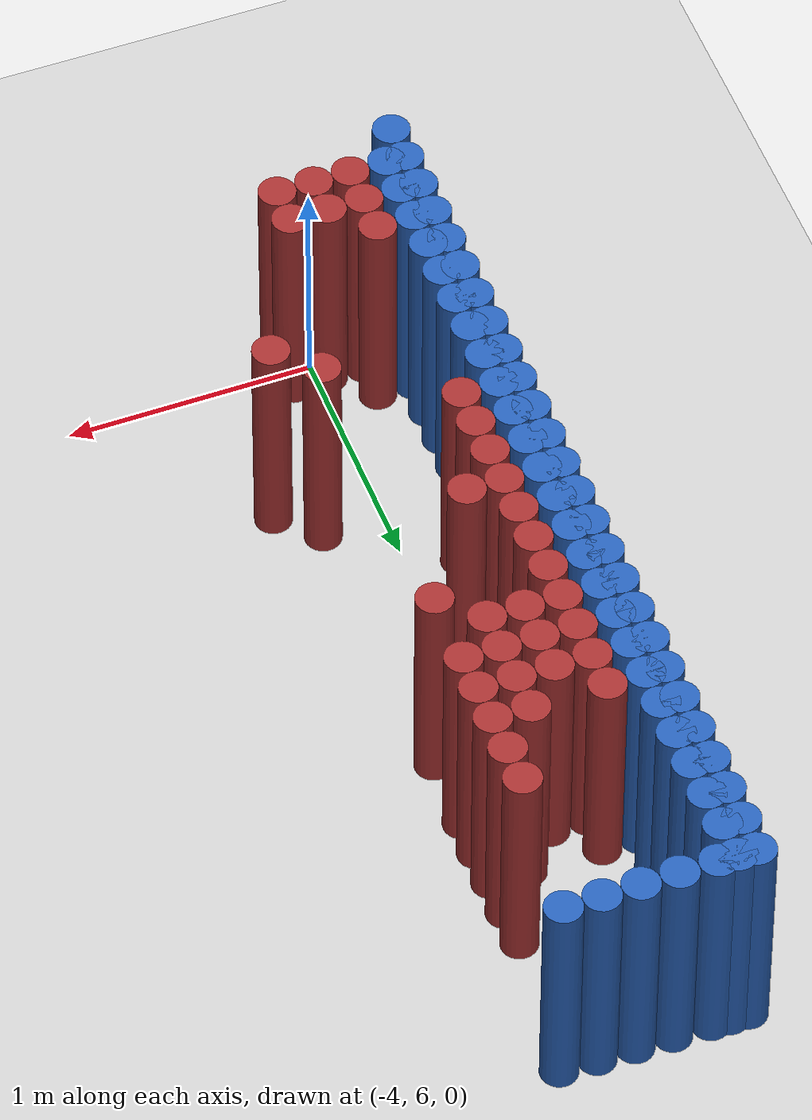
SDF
<sdf version="1.6">
 <world name="barn_world">
  <model name="ground_plane">
   <static>1</static>
   <link name="link">
    <collision name="collision">
     <geometry><plane><normal>0 0 1</normal><size>100 100</size></plane></geometry>
    </collision>
    <visual name="visual">
     <geometry><plane><normal>0 0 1</normal><size>100 100</size></plane></geometry>
     <material>
      <script><uri>file://media/materials/scripts/gazebo.material</uri><name>Gazebo/Grey</name></script>
     </material>
    </visual>
   </link>
  </model>
  <model name="unit_cylinder_131">
   <static>1</static>
   <pose>-4.3500 5.9250 0.5 0 0 0</pose>
   <link name="link">
    <collision name="collision">
     <geometry><cylinder><radius>0.075</radius><length>1</length></cylinder></geometry>
    </collision>
    <visual name="visual">
     <geometry><cylinder><radius>0.075</radius><length>1</length></cylinder></geometry>
     <material><ambient>0.152 0.379 0.72 1</ambient><diffuse>0.152 0.379 0.72 1</diffuse></material>
    </visual>
   </link>
  </model>
  <model name="unit_cylinder_132">
   <static>1</static>
   <pose>-4.3500 6.0750 0.5 0 0 0</pose>
   <link name="link">
    <collision name="collision">
     <geometry><cylinder><radius>0.075</radius><length>1</length></cylinder></geometry>
    </collision>
    <visual name="visual">
     <geometry><cylinder><radius>0.075</radius><length>1</length></cylinder></geometry>
     <material><ambient>0.152 0.379 0.72 1</ambient><diffuse>0.152 0.379 0.72 1</diffuse></material>
    </visual>
   </link>
  </model>
  <model name="unit_cylinder_133">
   <static>1</static>
   <pose>-4.3500 6.2250 0.5 0 0 0</pose>
   <link name="link">
    <collision name="collision">
     <geometry><cylinder><radius>0.075</radius><length>1</length></cylinder></geometry>
    </collision>
    <visual name="visual">
     <geometry><cylinder><radius>0.075</radius><length>1</length></cylinder></geometry>
     <material><ambient>0.152 0.379 0.72 1</ambient><diffuse>0.152 0.379 0.72 1</diffuse></material>
    </visual>
   </link>
  </model>
  <model name="unit_cylinder_134">
   <static>1</static>
   <pose>-4.3500 6.3750 0.5 0 0 0</pose>
   <link name="link">
    <collision name="collision">
     <geometry><cylinder><radius>0.075</radius><length>1</length></cylinder></geometry>
    </collision>
    <visual name="visual">
     <geometry><cylinder><radius>0.075</radius><length>1</length></cylinder></geometry>
     <material><ambient>0.152 0.379 0.72 1</ambient><diffuse>0.152 0.379 0.72 1</diffuse></material>
    </visual>
   </link>
  </model>
  <model name="unit_cylinder_135">
   <static>1</static>
   <pose>-4.3500 6.5250 0.5 0 0 0</pose>
   <link name="link">
    <collision name="collision">
     <geometry><cylinder><radius>0.075</radius><length>1</length></cylinder></geometry>
    </collision>
    <visual name="visual">
     <geometry><cylinder><radius>0.075</radius><length>1</length></cylinder></geometry>
     <material><ambient>0.152 0.379 0.72 1</ambient><diffuse>0.152 0.379 0.72 1</diffuse></material>
    </visual>
   </link>
  </model>
  <model name="unit_cylinder_136">
   <static>1</static>
   <pose>-4.3500 6.6750 0.5 0 0 0</pose>
   <link name="link">
    <collision name="collision">
     <geometry><cylinder><radius>0.075</radius><length>1</length></cylinder></geometry>
    </collision>
    <visual name="visual">
     <geometry><cylinder><radius>0.075</radius><length>1</length></cylinder></geometry>
     <material><ambient>0.152 0.379 0.72 1</ambient><diffuse>0.152 0.379 0.72 1</diffuse></material>
    </visual>
   </link>
  </model>
  <model name="unit_cylinder_137">
   <static>1</static>
   <pose>-4.3500 6.8250 0.5 0 0 0</pose>
   <link name="link">
    <collision name="collision">
     <geometry><cylinder><radius>0.075</radius><length>1</length></cylinder></geometry>
    </collision>
    <visual name="visual">
     <geometry><cylinder><radius>0.075</radius><length>1</length></cylinder></geometry>
     <material><ambient>0.152 0.379 0.72 1</ambient><diffuse>0.152 0.379 0.72 1</diffuse></material>
    </visual>
   </link>
  </model>
  <model name="unit_cylinder_138">
   <static>1</static>
   <pose>-4.3500 6.9750 0.5 0 0 0</pose>
   <link name="link">
    <collision name="collision">
     <geometry><cylinder><radius>0.075</radius><length>1</length></cylinder></geometry>
    </collision>
    <visual name="visual">
     <geometry><cylinder><radius>0.075</radius><length>1</length></cylinder></geometry>
     <material><ambient>0.152 0.379 0.72 1</ambient><diffuse>0.152 0.379 0.72 1</diffuse></material>
    </visual>
   </link>
  </model>
  <model name="unit_cylinder_139">
   <static>1</static>
   <pose>-4.3500 7.1250 0.5 0 0 0</pose>
   <link name="link">
    <collision name="collision">
     <geometry><cylinder><radius>0.075</radius><length>1</length></cylinder></geometry>
    </collision>
    <visual name="visual">
     <geometry><cylinder><radius>0.075</radius><length>1</length></cylinder></geometry>
     <material><ambient>0.152 0.379 0.72 1</ambient><diffuse>0.152 0.379 0.72 1</diffuse></material>
    </visual>
   </link>
  </model>
  <model name="unit_cylinder_140">
   <static>1</static>
   <pose>-4.3500 7.2750 0.5 0 0 0</pose>
   <link name="link">
    <collision name="collision">
     <geometry><cylinder><radius>0.075</radius><length>1</length></cylinder></geometry>
    </collision>
    <visual name="visual">
     <geometry><cylinder><radius>0.075</radius><length>1</length></cylinder></geometry>
     <material><ambient>0.152 0.379 0.72 1</ambient><diffuse>0.152 0.379 0.72 1</diffuse></material>
    </visual>
   </link>
  </model>
  <model name="unit_cylinder_141">
   <static>1</static>
   <pose>-4.3500 7.4250 0.5 0 0 0</pose>
   <link name="link">
    <collision name="collision">
     <geometry><cylinder><radius>0.075</radius><length>1</length></cylinder></geometry>
    </collision>
    <visual name="visual">
     <geometry><cylinder><radius>0.075</radius><length>1</length></cylinder></geometry>
     <material><ambient>0.152 0.379 0.72 1</ambient><diffuse>0.152 0.379 0.72 1</diffuse></material>
    </visual>
   </link>
  </model>
  <model name="unit_cylinder_142">
   <static>1</static>
   <pose>-4.3500 7.5750 0.5 0 0 0</pose>
   <link name="link">
    <collision name="collision">
     <geometry><cylinder><radius>0.075</radius><length>1</length></cylinder></geometry>
    </collision>
    <visual name="visual">
     <geometry><cylinder><radius>0.075</radius><length>1</length></cylinder></geometry>
     <material><ambient>0.152 0.379 0.72 1</ambient><diffuse>0.152 0.379 0.72 1</diffuse></material>
    </visual>
   </link>
  </model>
  <model name="unit_cylinder_143">
   <static>1</static>
   <pose>-4.3500 7.7250 0.5 0 0 0</pose>
   <link name="link">
    <collision name="collision">
     <geometry><cylinder><radius>0.075</radius><length>1</length></cylinder></geometry>
    </collision>
    <visual name="visual">
     <geometry><cylinder><radius>0.075</radius><length>1</length></cylinder></geometry>
     <material><ambient>0.152 0.379 0.72 1</ambient><diffuse>0.152 0.379 0.72 1</diffuse></material>
    </visual>
   </link>
  </model>
  <model name="unit_cylinder_144">
   <static>1</static>
   <pose>-4.3500 7.8750 0.5 0 0 0</pose>
   <link name="link">
    <collision name="collision">
     <geometry><cylinder><radius>0.075</radius><length>1</length></cylinder></geometry>
    </collision>
    <visual name="visual">
     <geometry><cylinder><radius>0.075</radius><length>1</length></cylinder></geometry>
     <material><ambient>0.152 0.379 0.72 1</ambient><diffuse>0.152 0.379 0.72 1</diffuse></material>
    </visual>
   </link>
  </model>
  <model name="unit_cylinder_145">
   <static>1</static>
   <pose>-4.3500 8.0250 0.5 0 0 0</pose>
   <link name="link">
    <collision name="collision">
     <geometry><cylinder><radius>0.075</radius><length>1</length></cylinder></geometry>
    </collision>
    <visual name="visual">
     <geometry><cylinder><radius>0.075</radius><length>1</length></cylinder></geometry>
     <material><ambient>0.152 0.379 0.72 1</ambient><diffuse>0.152 0.379 0.72 1</diffuse></material>
    </visual>
   </link>
  </model>
  <model name="unit_cylinder_146">
   <static>1</static>
   <pose>-4.3500 8.1750 0.5 0 0 0</pose>
   <link name="link">
    <collision name="collision">
     <geometry><cylinder><radius>0.075</radius><length>1</length></cylinder></geometry>
    </collision>
    <visual name="visual">
     <geometry><cylinder><radius>0.075</radius><length>1</length></cylinder></geometry>
     <material><ambient>0.152 0.379 0.72 1</ambient><diffuse>0.152 0.379 0.72 1</diffuse></material>
    </visual>
   </link>
  </model>
  <model name="unit_cylinder_147">
   <static>1</static>
   <pose>-4.3500 8.3250 0.5 0 0 0</pose>
   <link name="link">
    <collision name="collision">
     <geometry><cylinder><radius>0.075</radius><length>1</length></cylinder></geometry>
    </collision>
    <visual name="visual">
     <geometry><cylinder><radius>0.075</radius><length>1</length></cylinder></geometry>
     <material><ambient>0.152 0.379 0.72 1</ambient><diffuse>0.152 0.379 0.72 1</diffuse></material>
    </visual>
   </link>
  </model>
  <model name="unit_cylinder_148">
   <static>1</static>
   <pose>-4.3500 8.4750 0.5 0 0 0</pose>
   <link name="link">
    <collision name="collision">
     <geometry><cylinder><radius>0.075</radius><length>1</length></cylinder></geometry>
    </collision>
    <visual name="visual">
     <geometry><cylinder><radius>0.075</radius><length>1</length></cylinder></geometry>
     <material><ambient>0.152 0.379 0.72 1</ambient><diffuse>0.152 0.379 0.72 1</diffuse></material>
    </visual>
   </link>
  </model>
  <model name="unit_cylinder_149">
   <static>1</static>
   <pose>-4.3500 8.6250 0.5 0 0 0</pose>
   <link name="link">
    <collision name="collision">
     <geometry><cylinder><radius>0.075</radius><length>1</length></cylinder></geometry>
    </collision>
    <visual name="visual">
     <geometry><cylinder><radius>0.075</radius><length>1</length></cylinder></geometry>
     <material><ambient>0.152 0.379 0.72 1</ambient><diffuse>0.152 0.379 0.72 1</diffuse></material>
    </visual>
   </link>
  </model>
  <model name="unit_cylinder_150">
   <static>1</static>
   <pose>-4.3500 8.7750 0.5 0 0 0</pose>
   <link name="link">
    <collision name="collision">
     <geometry><cylinder><radius>0.075</radius><length>1</length></cylinder></geometry>
    </collision>
    <visual name="visual">
     <geometry><cylinder><radius>0.075</radius><length>1</length></cylinder></geometry>
     <material><ambient>0.152 0.379 0.72 1</ambient><diffuse>0.152 0.379 0.72 1</diffuse></material>
    </visual>
   </link>
  </model>
  <model name="unit_cylinder_151">
   <static>1</static>
   <pose>-4.3500 8.9250 0.5 0 0 0</pose>
   <link name="link">
    <collision name="collision">
     <geometry><cylinder><radius>0.075</radius><length>1</length></cylinder></geometry>
    </collision>
    <visual name="visual">
     <geometry><cylinder><radius>0.075</radius><length>1</length></cylinder></geometry>
     <material><ambient>0.152 0.379 0.72 1</ambient><diffuse>0.152 0.379 0.72 1</diffuse></material>
    </visual>
   </link>
  </model>
  <model name="unit_cylinder_152">
   <static>1</static>
   <pose>-4.3500 9.0750 0.5 0 0 0</pose>
   <link name="link">
    <collision name="collision">
     <geometry><cylinder><radius>0.075</radius><length>1</length></cylinder></geometry>
    </collision>
    <visual name="visual">
     <geometry><cylinder><radius>0.075</radius><length>1</length></cylinder></geometry>
     <material><ambient>0.152 0.379 0.72 1</ambient><diffuse>0.152 0.379 0.72 1</diffuse></material>
    </visual>
   </link>
  </model>
  <model name="unit_cylinder_153">
   <static>1</static>
   <pose>-4.3500 9.2250 0.5 0 0 0</pose>
   <link name="link">
    <collision name="collision">
     <geometry><cylinder><radius>0.075</radius><length>1</length></cylinder></geometry>
    </collision>
    <visual name="visual">
     <geometry><cylinder><radius>0.075</radius><length>1</length></cylinder></geometry>
     <material><ambient>0.152 0.379 0.72 1</ambient><diffuse>0.152 0.379 0.72 1</diffuse></material>
    </visual>
   </link>
  </model>
  <model name="unit_cylinder_154">
   <static>1</static>
   <pose>-4.3500 9.3750 0.5 0 0 0</pose>
   <link name="link">
    <collision name="collision">
     <geometry><cylinder><radius>0.075</radius><length>1</length></cylinder></geometry>
    </collision>
    <visual name="visual">
     <geometry><cylinder><radius>0.075</radius><length>1</length></cylinder></geometry>
     <material><ambient>0.152 0.379 0.72 1</ambient><diffuse>0.152 0.379 0.72 1</diffuse></material>
    </visual>
   </link>
  </model>
  <model name="unit_cylinder_155">
   <static>1</static>
   <pose>-4.3500 9.5250 0.5 0 0 0</pose>
   <link name="link">
    <collision name="collision">
     <geometry><cylinder><radius>0.075</radius><length>1</length></cylinder></geometry>
    </collision>
    <visual name="visual">
     <geometry><cylinder><radius>0.075</radius><length>1</length></cylinder></geometry>
     <material><ambient>0.152 0.379 0.72 1</ambient><diffuse>0.152 0.379 0.72 1</diffuse></material>
    </visual>
   </link>
  </model>
  <model name="unit_cylinder_161">
   <static>1</static>
   <pose>-4.2000 5.9250 0.5 0 0 0</pose>
   <link name="link">
    <collision name="collision">
     <geometry><cylinder><radius>0.075</radius><length>1</length></cylinder></geometry>
    </collision>
    <visual name="visual">
     <geometry><cylinder><radius>0.075</radius><length>1</length></cylinder></geometry>
     <material><ambient>0.648 0.192 0.192 1</ambient><diffuse>0.648 0.192 0.192 1</diffuse></material>
    </visual>
   </link>
  </model>
  <model name="unit_cylinder_162">
   <static>1</static>
   <pose>-4.2000 6.0750 0.5 0 0 0</pose>
   <link name="link">
    <collision name="collision">
     <geometry><cylinder><radius>0.075</radius><length>1</length></cylinder></geometry>
    </collision>
    <visual name="visual">
     <geometry><cylinder><radius>0.075</radius><length>1</length></cylinder></geometry>
     <material><ambient>0.648 0.192 0.192 1</ambient><diffuse>0.648 0.192 0.192 1</diffuse></material>
    </visual>
   </link>
  </model>
  <model name="unit_cylinder_163">
   <static>1</static>
   <pose>-4.2000 6.2250 0.5 0 0 0</pose>
   <link name="link">
    <collision name="collision">
     <geometry><cylinder><radius>0.075</radius><length>1</length></cylinder></geometry>
    </collision>
    <visual name="visual">
     <geometry><cylinder><radius>0.075</radius><length>1</length></cylinder></geometry>
     <material><ambient>0.648 0.192 0.192 1</ambient><diffuse>0.648 0.192 0.192 1</diffuse></material>
    </visual>
   </link>
  </model>
  <model name="unit_cylinder_164">
   <static>1</static>
   <pose>-4.2000 7.1250 0.5 0 0 0</pose>
   <link name="link">
    <collision name="collision">
     <geometry><cylinder><radius>0.075</radius><length>1</length></cylinder></geometry>
    </collision>
    <visual name="visual">
     <geometry><cylinder><radius>0.075</radius><length>1</length></cylinder></geometry>
     <material><ambient>0.648 0.192 0.192 1</ambient><diffuse>0.648 0.192 0.192 1</diffuse></material>
    </visual>
   </link>
  </model>
  <model name="unit_cylinder_165">
   <static>1</static>
   <pose>-4.2000 7.2750 0.5 0 0 0</pose>
   <link name="link">
    <collision name="collision">
     <geometry><cylinder><radius>0.075</radius><length>1</length></cylinder></geometry>
    </collision>
    <visual name="visual">
     <geometry><cylinder><radius>0.075</radius><length>1</length></cylinder></geometry>
     <material><ambient>0.648 0.192 0.192 1</ambient><diffuse>0.648 0.192 0.192 1</diffuse></material>
    </visual>
   </link>
  </model>
  <model name="unit_cylinder_166">
   <static>1</static>
   <pose>-4.2000 7.4250 0.5 0 0 0</pose>
   <link name="link">
    <collision name="collision">
     <geometry><cylinder><radius>0.075</radius><length>1</length></cylinder></geometry>
    </collision>
    <visual name="visual">
     <geometry><cylinder><radius>0.075</radius><length>1</length></cylinder></geometry>
     <material><ambient>0.648 0.192 0.192 1</ambient><diffuse>0.648 0.192 0.192 1</diffuse></material>
    </visual>
   </link>
  </model>
  <model name="unit_cylinder_167">
   <static>1</static>
   <pose>-4.2000 7.5750 0.5 0 0 0</pose>
   <link name="link">
    <collision name="collision">
     <geometry><cylinder><radius>0.075</radius><length>1</length></cylinder></geometry>
    </collision>
    <visual name="visual">
     <geometry><cylinder><radius>0.075</radius><length>1</length></cylinder></geometry>
     <material><ambient>0.648 0.192 0.192 1</ambient><diffuse>0.648 0.192 0.192 1</diffuse></material>
    </visual>
   </link>
  </model>
  <model name="unit_cylinder_168">
   <static>1</static>
   <pose>-4.2000 7.7250 0.5 0 0 0</pose>
   <link name="link">
    <collision name="collision">
     <geometry><cylinder><radius>0.075</radius><length>1</length></cylinder></geometry>
    </collision>
    <visual name="visual">
     <geometry><cylinder><radius>0.075</radius><length>1</length></cylinder></geometry>
     <material><ambient>0.648 0.192 0.192 1</ambient><diffuse>0.648 0.192 0.192 1</diffuse></material>
    </visual>
   </link>
  </model>
  <model name="unit_cylinder_169">
   <static>1</static>
   <pose>-4.2000 7.8750 0.5 0 0 0</pose>
   <link name="link">
    <collision name="collision">
     <geometry><cylinder><radius>0.075</radius><length>1</length></cylinder></geometry>
    </collision>
    <visual name="visual">
     <geometry><cylinder><radius>0.075</radius><length>1</length></cylinder></geometry>
     <material><ambient>0.648 0.192 0.192 1</ambient><diffuse>0.648 0.192 0.192 1</diffuse></material>
    </visual>
   </link>
  </model>
  <model name="unit_cylinder_170">
   <static>1</static>
   <pose>-4.2000 8.0250 0.5 0 0 0</pose>
   <link name="link">
    <collision name="collision">
     <geometry><cylinder><radius>0.075</radius><length>1</length></cylinder></geometry>
    </collision>
    <visual name="visual">
     <geometry><cylinder><radius>0.075</radius><length>1</length></cylinder></geometry>
     <material><ambient>0.648 0.192 0.192 1</ambient><diffuse>0.648 0.192 0.192 1</diffuse></material>
    </visual>
   </link>
  </model>
  <model name="unit_cylinder_171">
   <static>1</static>
   <pose>-4.2000 8.1750 0.5 0 0 0</pose>
   <link name="link">
    <collision name="collision">
     <geometry><cylinder><radius>0.075</radius><length>1</length></cylinder></geometry>
    </collision>
    <visual name="visual">
     <geometry><cylinder><radius>0.075</radius><length>1</length></cylinder></geometry>
     <material><ambient>0.648 0.192 0.192 1</ambient><diffuse>0.648 0.192 0.192 1</diffuse></material>
    </visual>
   </link>
  </model>
  <model name="unit_cylinder_172">
   <static>1</static>
   <pose>-4.2000 8.3250 0.5 0 0 0</pose>
   <link name="link">
    <collision name="collision">
     <geometry><cylinder><radius>0.075</radius><length>1</length></cylinder></geometry>
    </collision>
    <visual name="visual">
     <geometry><cylinder><radius>0.075</radius><length>1</length></cylinder></geometry>
     <material><ambient>0.648 0.192 0.192 1</ambient><diffuse>0.648 0.192 0.192 1</diffuse></material>
    </visual>
   </link>
  </model>
  <model name="unit_cylinder_173">
   <static>1</static>
   <pose>-4.2000 8.4750 0.5 0 0 0</pose>
   <link name="link">
    <collision name="collision">
     <geometry><cylinder><radius>0.075</radius><length>1</length></cylinder></geometry>
    </collision>
    <visual name="visual">
     <geometry><cylinder><radius>0.075</radius><length>1</length></cylinder></geometry>
     <material><ambient>0.648 0.192 0.192 1</ambient><diffuse>0.648 0.192 0.192 1</diffuse></material>
    </visual>
   </link>
  </model>
  <model name="unit_cylinder_174">
   <static>1</static>
   <pose>-4.2000 8.6250 0.5 0 0 0</pose>
   <link name="link">
    <collision name="collision">
     <geometry><cylinder><radius>0.075</radius><length>1</length></cylinder></geometry>
    </collision>
    <visual name="visual">
     <geometry><cylinder><radius>0.075</radius><length>1</length></cylinder></geometry>
     <material><ambient>0.648 0.192 0.192 1</ambient><diffuse>0.648 0.192 0.192 1</diffuse></material>
    </visual>
   </link>
  </model>
  <model name="unit_cylinder_180">
   <static>1</static>
   <pose>-4.0500 5.9250 0.5 0 0 0</pose>
   <link name="link">
    <collision name="collision">
     <geometry><cylinder><radius>0.075</radius><length>1</length></cylinder></geometry>
    </collision>
    <visual name="visual">
     <geometry><cylinder><radius>0.075</radius><length>1</length></cylinder></geometry>
     <material><ambient>0.648 0.192 0.192 1</ambient><diffuse>0.648 0.192 0.192 1</diffuse></material>
    </visual>
   </link>
  </model>
  <model name="unit_cylinder_181">
   <static>1</static>
   <pose>-4.0500 6.0750 0.5 0 0 0</pose>
   <link name="link">
    <collision name="collision">
     <geometry><cylinder><radius>0.075</radius><length>1</length></cylinder></geometry>
    </collision>
    <visual name="visual">
     <geometry><cylinder><radius>0.075</radius><length>1</length></cylinder></geometry>
     <material><ambient>0.648 0.192 0.192 1</ambient><diffuse>0.648 0.192 0.192 1</diffuse></material>
    </visual>
   </link>
  </model>
  <model name="unit_cylinder_182">
   <static>1</static>
   <pose>-4.0500 7.5750 0.5 0 0 0</pose>
   <link name="link">
    <collision name="collision">
     <geometry><cylinder><radius>0.075</radius><length>1</length></cylinder></geometry>
    </collision>
    <visual name="visual">
     <geometry><cylinder><radius>0.075</radius><length>1</length></cylinder></geometry>
     <material><ambient>0.648 0.192 0.192 1</ambient><diffuse>0.648 0.192 0.192 1</diffuse></material>
    </visual>
   </link>
  </model>
  <model name="unit_cylinder_183">
   <static>1</static>
   <pose>-4.0500 8.1750 0.5 0 0 0</pose>
   <link name="link">
    <collision name="collision">
     <geometry><cylinder><radius>0.075</radius><length>1</length></cylinder></geometry>
    </collision>
    <visual name="visual">
     <geometry><cylinder><radius>0.075</radius><length>1</length></cylinder></geometry>
     <material><ambient>0.648 0.192 0.192 1</ambient><diffuse>0.648 0.192 0.192 1</diffuse></material>
    </visual>
   </link>
  </model>
  <model name="unit_cylinder_184">
   <static>1</static>
   <pose>-4.0500 8.3250 0.5 0 0 0</pose>
   <link name="link">
    <collision name="collision">
     <geometry><cylinder><radius>0.075</radius><length>1</length></cylinder></geometry>
    </collision>
    <visual name="visual">
     <geometry><cylinder><radius>0.075</radius><length>1</length></cylinder></geometry>
     <material><ambient>0.648 0.192 0.192 1</ambient><diffuse>0.648 0.192 0.192 1</diffuse></material>
    </visual>
   </link>
  </model>
  <model name="unit_cylinder_185">
   <static>1</static>
   <pose>-4.0500 8.4750 0.5 0 0 0</pose>
   <link name="link">
    <collision name="collision">
     <geometry><cylinder><radius>0.075</radius><length>1</length></cylinder></geometry>
    </collision>
    <visual name="visual">
     <geometry><cylinder><radius>0.075</radius><length>1</length></cylinder></geometry>
     <material><ambient>0.648 0.192 0.192 1</ambient><diffuse>0.648 0.192 0.192 1</diffuse></material>
    </visual>
   </link>
  </model>
  <model name="unit_cylinder_190">
   <static>1</static>
   <pose>-3.9000 5.9250 0.5 0 0 0</pose>
   <link name="link">
    <collision name="collision">
     <geometry><cylinder><radius>0.075</radius><length>1</length></cylinder></geometry>
    </collision>
    <visual name="visual">
     <geometry><cylinder><radius>0.075</radius><length>1</length></cylinder></geometry>
     <material><ambient>0.648 0.192 0.192 1</ambient><diffuse>0.648 0.192 0.192 1</diffuse></material>
    </visual>
   </link>
  </model>
  <model name="unit_cylinder_191">
   <static>1</static>
   <pose>-3.9000 6.0750 0.5 0 0 0</pose>
   <link name="link">
    <collision name="collision">
     <geometry><cylinder><radius>0.075</radius><length>1</length></cylinder></geometry>
    </collision>
    <visual name="visual">
     <geometry><cylinder><radius>0.075</radius><length>1</length></cylinder></geometry>
     <material><ambient>0.648 0.192 0.192 1</ambient><diffuse>0.648 0.192 0.192 1</diffuse></material>
    </visual>
   </link>
  </model>
  <model name="unit_cylinder_192">
   <static>1</static>
   <pose>-3.9000 8.1750 0.5 0 0 0</pose>
   <link name="link">
    <collision name="collision">
     <geometry><cylinder><radius>0.075</radius><length>1</length></cylinder></geometry>
    </collision>
    <visual name="visual">
     <geometry><cylinder><radius>0.075</radius><length>1</length></cylinder></geometry>
     <material><ambient>0.648 0.192 0.192 1</ambient><diffuse>0.648 0.192 0.192 1</diffuse></material>
    </visual>
   </link>
  </model>
  <model name="unit_cylinder_193">
   <static>1</static>
   <pose>-3.9000 8.3250 0.5 0 0 0</pose>
   <link name="link">
    <collision name="collision">
     <geometry><cylinder><radius>0.075</radius><length>1</length></cylinder></geometry>
    </collision>
    <visual name="visual">
     <geometry><cylinder><radius>0.075</radius><length>1</length></cylinder></geometry>
     <material><ambient>0.648 0.192 0.192 1</ambient><diffuse>0.648 0.192 0.192 1</diffuse></material>
    </visual>
   </link>
  </model>
  <model name="unit_cylinder_194">
   <static>1</static>
   <pose>-3.9000 8.4750 0.5 0 0 0</pose>
   <link name="link">
    <collision name="collision">
     <geometry><cylinder><radius>0.075</radius><length>1</length></cylinder></geometry>
    </collision>
    <visual name="visual">
     <geometry><cylinder><radius>0.075</radius><length>1</length></cylinder></geometry>
     <material><ambient>0.648 0.192 0.192 1</ambient><diffuse>0.648 0.192 0.192 1</diffuse></material>
    </visual>
   </link>
  </model>
  <model name="unit_cylinder_195">
   <static>1</static>
   <pose>-3.9000 8.6250 0.5 0 0 0</pose>
   <link name="link">
    <collision name="collision">
     <geometry><cylinder><radius>0.075</radius><length>1</length></cylinder></geometry>
    </collision>
    <visual name="visual">
     <geometry><cylinder><radius>0.075</radius><length>1</length></cylinder></geometry>
     <material><ambient>0.648 0.192 0.192 1</ambient><diffuse>0.648 0.192 0.192 1</diffuse></material>
    </visual>
   </link>
  </model>
  <model name="unit_cylinder_200">
   <static>1</static>
   <pose>-3.7500 6.8250 0.5 0 0 0</pose>
   <link name="link">
    <collision name="collision">
     <geometry><cylinder><radius>0.075</radius><length>1</length></cylinder></geometry>
    </collision>
    <visual name="visual">
     <geometry><cylinder><radius>0.075</radius><length>1</length></cylinder></geometry>
     <material><ambient>0.648 0.192 0.192 1</ambient><diffuse>0.648 0.192 0.192 1</diffuse></material>
    </visual>
   </link>
  </model>
  <model name="unit_cylinder_201">
   <static>1</static>
   <pose>-3.7500 8.0250 0.5 0 0 0</pose>
   <link name="link">
    <collision name="collision">
     <geometry><cylinder><radius>0.075</radius><length>1</length></cylinder></geometry>
    </collision>
    <visual name="visual">
     <geometry><cylinder><radius>0.075</radius><length>1</length></cylinder></geometry>
     <material><ambient>0.648 0.192 0.192 1</ambient><diffuse>0.648 0.192 0.192 1</diffuse></material>
    </visual>
   </link>
  </model>
  <model name="unit_cylinder_202">
   <static>1</static>
   <pose>-3.7500 8.3250 0.5 0 0 0</pose>
   <link name="link">
    <collision name="collision">
     <geometry><cylinder><radius>0.075</radius><length>1</length></cylinder></geometry>
    </collision>
    <visual name="visual">
     <geometry><cylinder><radius>0.075</radius><length>1</length></cylinder></geometry>
     <material><ambient>0.648 0.192 0.192 1</ambient><diffuse>0.648 0.192 0.192 1</diffuse></material>
    </visual>
   </link>
  </model>
  <model name="unit_cylinder_203">
   <static>1</static>
   <pose>-3.7500 8.4750 0.5 0 0 0</pose>
   <link name="link">
    <collision name="collision">
     <geometry><cylinder><radius>0.075</radius><length>1</length></cylinder></geometry>
    </collision>
    <visual name="visual">
     <geometry><cylinder><radius>0.075</radius><length>1</length></cylinder></geometry>
     <material><ambient>0.648 0.192 0.192 1</ambient><diffuse>0.648 0.192 0.192 1</diffuse></material>
    </visual>
   </link>
  </model>
  <model name="unit_cylinder_204">
   <static>1</static>
   <pose>-3.7500 8.6250 0.5 0 0 0</pose>
   <link name="link">
    <collision name="collision">
     <geometry><cylinder><radius>0.075</radius><length>1</length></cylinder></geometry>
    </collision>
    <visual name="visual">
     <geometry><cylinder><radius>0.075</radius><length>1</length></cylinder></geometry>
     <material><ambient>0.648 0.192 0.192 1</ambient><diffuse>0.648 0.192 0.192 1</diffuse></material>
    </visual>
   </link>
  </model>
  <model name="unit_cylinder_205">
   <static>1</static>
   <pose>-3.7500 8.7750 0.5 0 0 0</pose>
   <link name="link">
    <collision name="collision">
     <geometry><cylinder><radius>0.075</radius><length>1</length></cylinder></geometry>
    </collision>
    <visual name="visual">
     <geometry><cylinder><radius>0.075</radius><length>1</length></cylinder></geometry>
     <material><ambient>0.648 0.192 0.192 1</ambient><diffuse>0.648 0.192 0.192 1</diffuse></material>
    </visual>
   </link>
  </model>
  <model name="unit_cylinder_206">
   <static>1</static>
   <pose>-3.7500 8.9250 0.5 0 0 0</pose>
   <link name="link">
    <collision name="collision">
     <geometry><cylinder><radius>0.075</radius><length>1</length></cylinder></geometry>
    </collision>
    <visual name="visual">
     <geometry><cylinder><radius>0.075</radius><length>1</length></cylinder></geometry>
     <material><ambient>0.648 0.192 0.192 1</ambient><diffuse>0.648 0.192 0.192 1</diffuse></material>
    </visual>
   </link>
  </model>
  <model name="unit_cylinder_210">
   <static>1</static>
   <pose>-3.6000 6.6750 0.5 0 0 0</pose>
   <link name="link">
    <collision name="collision">
     <geometry><cylinder><radius>0.075</radius><length>1</length></cylinder></geometry>
    </collision>
    <visual name="visual">
     <geometry><cylinder><radius>0.075</radius><length>1</length></cylinder></geometry>
     <material><ambient>0.648 0.192 0.192 1</ambient><diffuse>0.648 0.192 0.192 1</diffuse></material>
    </visual>
   </link>
  </model>
  <model name="unit_cylinder_384">
   <static>1</static>
   <pose>-3.6750 9.5250 0.5 0 0 0</pose>
   <link name="link">
    <collision name="collision">
     <geometry><cylinder><radius>0.075</radius><length>1</length></cylinder></geometry>
    </collision>
    <visual name="visual">
     <geometry><cylinder><radius>0.075</radius><length>1</length></cylinder></geometry>
     <material><ambient>0.152 0.379 0.72 1</ambient><diffuse>0.152 0.379 0.72 1</diffuse></material>
    </visual>
   </link>
  </model>
  <model name="unit_cylinder_385">
   <static>1</static>
   <pose>-3.8250 9.5250 0.5 0 0 0</pose>
   <link name="link">
    <collision name="collision">
     <geometry><cylinder><radius>0.075</radius><length>1</length></cylinder></geometry>
    </collision>
    <visual name="visual">
     <geometry><cylinder><radius>0.075</radius><length>1</length></cylinder></geometry>
     <material><ambient>0.152 0.379 0.72 1</ambient><diffuse>0.152 0.379 0.72 1</diffuse></material>
    </visual>
   </link>
  </model>
  <model name="unit_cylinder_386">
   <static>1</static>
   <pose>-3.9750 9.5250 0.5 0 0 0</pose>
   <link name="link">
    <collision name="collision">
     <geometry><cylinder><radius>0.075</radius><length>1</length></cylinder></geometry>
    </collision>
    <visual name="visual">
     <geometry><cylinder><radius>0.075</radius><length>1</length></cylinder></geometry>
     <material><ambient>0.152 0.379 0.72 1</ambient><diffuse>0.152 0.379 0.72 1</diffuse></material>
    </visual>
   </link>
  </model>
  <model name="unit_cylinder_387">
   <static>1</static>
   <pose>-4.1250 9.5250 0.5 0 0 0</pose>
   <link name="link">
    <collision name="collision">
     <geometry><cylinder><radius>0.075</radius><length>1</length></cylinder></geometry>
    </collision>
    <visual name="visual">
     <geometry><cylinder><radius>0.075</radius><length>1</length></cylinder></geometry>
     <material><ambient>0.152 0.379 0.72 1</ambient><diffuse>0.152 0.379 0.72 1</diffuse></material>
    </visual>
   </link>
  </model>
  <model name="unit_cylinder_388">
   <static>1</static>
   <pose>-4.2750 9.5250 0.5 0 0 0</pose>
   <link name="link">
    <collision name="collision">
     <geometry><cylinder><radius>0.075</radius><length>1</length></cylinder></geometry>
    </collision>
    <visual name="visual">
     <geometry><cylinder><radius>0.075</radius><length>1</length></cylinder></geometry>
     <material><ambient>0.152 0.379 0.72 1</ambient><diffuse>0.152 0.379 0.72 1</diffuse></material>
    </visual>
   </link>
  </model>
  <model name="unit_cylinder_389">
   <static>1</static>
   <pose>-4.4250 9.5250 0.5 0 0 0</pose>
   <link name="link">
    <collision name="collision">
     <geometry><cylinder><radius>0.075</radius><length>1</length></cylinder></geometry>
    </collision>
    <visual name="visual">
     <geometry><cylinder><radius>0.075</radius><length>1</length></cylinder></geometry>
     <material><ambient>0.152 0.379 0.72 1</ambient><diffuse>0.152 0.379 0.72 1</diffuse></material>
    </visual>
   </link>
  </model>
  <model name="unit_cylinder_399">
   <static>1</static>
   <pose>-4.4250 5.7750 0.5 0 0 0</pose>
   <link name="link">
    <collision name="collision">
     <geometry><cylinder><radius>0.075</radius><length>1</length></cylinder></geometry>
    </collision>
    <visual name="visual">
     <geometry><cylinder><radius>0.075</radius><length>1</length></cylinder></geometry>
     <material><ambient>0.152 0.379 0.72 1</ambient><diffuse>0.152 0.379 0.72 1</diffuse></material>
    </visual>
   </link>
  </model>
  <model name="unit_cylinder_401">
   <static>1</static>
   <pose>-4.4250 5.9250 0.5 0 0 0</pose>
   <link name="link">
    <collision name="collision">
     <geometry><cylinder><radius>0.075</radius><length>1</length></cylinder></geometry>
    </collision>
    <visual name="visual">
     <geometry><cylinder><radius>0.075</radius><length>1</length></cylinder></geometry>
     <material><ambient>0.152 0.379 0.72 1</ambient><diffuse>0.152 0.379 0.72 1</diffuse></material>
    </visual>
   </link>
  </model>
  <model name="unit_cylinder_403">
   <static>1</static>
   <pose>-4.4250 6.0750 0.5 0 0 0</pose>
   <link name="link">
    <collision name="collision">
     <geometry><cylinder><radius>0.075</radius><length>1</length></cylinder></geometry>
    </collision>
    <visual name="visual">
     <geometry><cylinder><radius>0.075</radius><length>1</length></cylinder></geometry>
     <material><ambient>0.152 0.379 0.72 1</ambient><diffuse>0.152 0.379 0.72 1</diffuse></material>
    </visual>
   </link>
  </model>
  <model name="unit_cylinder_405">
   <static>1</static>
   <pose>-4.4250 6.2250 0.5 0 0 0</pose>
   <link name="link">
    <collision name="collision">
     <geometry><cylinder><radius>0.075</radius><length>1</length></cylinder></geometry>
    </collision>
    <visual name="visual">
     <geometry><cylinder><radius>0.075</radius><length>1</length></cylinder></geometry>
     <material><ambient>0.152 0.379 0.72 1</ambient><diffuse>0.152 0.379 0.72 1</diffuse></material>
    </visual>
   </link>
  </model>
  <model name="unit_cylinder_407">
   <static>1</static>
   <pose>-4.4250 6.3750 0.5 0 0 0</pose>
   <link name="link">
    <collision name="collision">
     <geometry><cylinder><radius>0.075</radius><length>1</length></cylinder></geometry>
    </collision>
    <visual name="visual">
     <geometry><cylinder><radius>0.075</radius><length>1</length></cylinder></geometry>
     <material><ambient>0.152 0.379 0.72 1</ambient><diffuse>0.152 0.379 0.72 1</diffuse></material>
    </visual>
   </link>
  </model>
  <model name="unit_cylinder_409">
   <static>1</static>
   <pose>-4.4250 6.5250 0.5 0 0 0</pose>
   <link name="link">
    <collision name="collision">
     <geometry><cylinder><radius>0.075</radius><length>1</length></cylinder></geometry>
    </collision>
    <visual name="visual">
     <geometry><cylinder><radius>0.075</radius><length>1</length></cylinder></geometry>
     <material><ambient>0.152 0.379 0.72 1</ambient><diffuse>0.152 0.379 0.72 1</diffuse></material>
    </visual>
   </link>
  </model>
  <model name="unit_cylinder_411">
   <static>1</static>
   <pose>-4.4250 6.6750 0.5 0 0 0</pose>
   <link name="link">
    <collision name="collision">
     <geometry><cylinder><radius>0.075</radius><length>1</length></cylinder></geometry>
    </collision>
    <visual name="visual">
     <geometry><cylinder><radius>0.075</radius><length>1</length></cylinder></geometry>
     <material><ambient>0.152 0.379 0.72 1</ambient><diffuse>0.152 0.379 0.72 1</diffuse></material>
    </visual>
   </link>
  </model>
  <model name="unit_cylinder_413">
   <static>1</static>
   <pose>-4.4250 6.8250 0.5 0 0 0</pose>
   <link name="link">
    <collision name="collision">
     <geometry><cylinder><radius>0.075</radius><length>1</length></cylinder></geometry>
    </collision>
    <visual name="visual">
     <geometry><cylinder><radius>0.075</radius><length>1</length></cylinder></geometry>
     <material><ambient>0.152 0.379 0.72 1</ambient><diffuse>0.152 0.379 0.72 1</diffuse></material>
    </visual>
   </link>
  </model>
  <model name="unit_cylinder_415">
   <static>1</static>
   <pose>-4.4250 6.9750 0.5 0 0 0</pose>
   <link name="link">
    <collision name="collision">
     <geometry><cylinder><radius>0.075</radius><length>1</length></cylinder></geometry>
    </collision>
    <visual name="visual">
     <geometry><cylinder><radius>0.075</radius><length>1</length></cylinder></geometry>
     <material><ambient>0.152 0.379 0.72 1</ambient><diffuse>0.152 0.379 0.72 1</diffuse></material>
    </visual>
   </link>
  </model>
  <model name="unit_cylinder_417">
   <static>1</static>
   <pose>-4.4250 7.1250 0.5 0 0 0</pose>
   <link name="link">
    <collision name="collision">
     <geometry><cylinder><radius>0.075</radius><length>1</length></cylinder></geometry>
    </collision>
    <visual name="visual">
     <geometry><cylinder><radius>0.075</radius><length>1</length></cylinder></geometry>
     <material><ambient>0.152 0.379 0.72 1</ambient><diffuse>0.152 0.379 0.72 1</diffuse></material>
    </visual>
   </link>
  </model>
  <model name="unit_cylinder_419">
   <static>1</static>
   <pose>-4.4250 7.2750 0.5 0 0 0</pose>
   <link name="link">
    <collision name="collision">
     <geometry><cylinder><radius>0.075</radius><length>1</length></cylinder></geometry>
    </collision>
    <visual name="visual">
     <geometry><cylinder><radius>0.075</radius><length>1</length></cylinder></geometry>
     <material><ambient>0.152 0.379 0.72 1</ambient><diffuse>0.152 0.379 0.72 1</diffuse></material>
    </visual>
   </link>
  </model>
  <model name="unit_cylinder_421">
   <static>1</static>
   <pose>-4.4250 7.4250 0.5 0 0 0</pose>
   <link name="link">
    <collision name="collision">
     <geometry><cylinder><radius>0.075</radius><length>1</length></cylinder></geometry>
    </collision>
    <visual name="visual">
     <geometry><cylinder><radius>0.075</radius><length>1</length></cylinder></geometry>
     <material><ambient>0.152 0.379 0.72 1</ambient><diffuse>0.152 0.379 0.72 1</diffuse></material>
    </visual>
   </link>
  </model>
  <model name="unit_cylinder_423">
   <static>1</static>
   <pose>-4.4250 7.5750 0.5 0 0 0</pose>
   <link name="link">
    <collision name="collision">
     <geometry><cylinder><radius>0.075</radius><length>1</length></cylinder></geometry>
    </collision>
    <visual name="visual">
     <geometry><cylinder><radius>0.075</radius><length>1</length></cylinder></geometry>
     <material><ambient>0.152 0.379 0.72 1</ambient><diffuse>0.152 0.379 0.72 1</diffuse></material>
    </visual>
   </link>
  </model>
  <model name="unit_cylinder_425">
   <static>1</static>
   <pose>-4.4250 7.7250 0.5 0 0 0</pose>
   <link name="link">
    <collision name="collision">
     <geometry><cylinder><radius>0.075</radius><length>1</length></cylinder></geometry>
    </collision>
    <visual name="visual">
     <geometry><cylinder><radius>0.075</radius><length>1</length></cylinder></geometry>
     <material><ambient>0.152 0.379 0.72 1</ambient><diffuse>0.152 0.379 0.72 1</diffuse></material>
    </visual>
   </link>
  </model>
  <model name="unit_cylinder_427">
   <static>1</static>
   <pose>-4.4250 7.8750 0.5 0 0 0</pose>
   <link name="link">
    <collision name="collision">
     <geometry><cylinder><radius>0.075</radius><length>1</length></cylinder></geometry>
    </collision>
    <visual name="visual">
     <geometry><cylinder><radius>0.075</radius><length>1</length></cylinder></geometry>
     <material><ambient>0.152 0.379 0.72 1</ambient><diffuse>0.152 0.379 0.72 1</diffuse></material>
    </visual>
   </link>
  </model>
  <model name="unit_cylinder_429">
   <static>1</static>
   <pose>-4.4250 8.0250 0.5 0 0 0</pose>
   <link name="link">
    <collision name="collision">
     <geometry><cylinder><radius>0.075</radius><length>1</length></cylinder></geometry>
    </collision>
    <visual name="visual">
     <geometry><cylinder><radius>0.075</radius><length>1</length></cylinder></geometry>
     <material><ambient>0.152 0.379 0.72 1</ambient><diffuse>0.152 0.379 0.72 1</diffuse></material>
    </visual>
   </link>
  </model>
  <model name="unit_cylinder_431">
   <static>1</static>
   <pose>-4.4250 8.1750 0.5 0 0 0</pose>
   <link name="link">
    <collision name="collision">
     <geometry><cylinder><radius>0.075</radius><length>1</length></cylinder></geometry>
    </collision>
    <visual name="visual">
     <geometry><cylinder><radius>0.075</radius><length>1</length></cylinder></geometry>
     <material><ambient>0.152 0.379 0.72 1</ambient><diffuse>0.152 0.379 0.72 1</diffuse></material>
    </visual>
   </link>
  </model>
  <model name="unit_cylinder_433">
   <static>1</static>
   <pose>-4.4250 8.3250 0.5 0 0 0</pose>
   <link name="link">
    <collision name="collision">
     <geometry><cylinder><radius>0.075</radius><length>1</length></cylinder></geometry>
    </collision>
    <visual name="visual">
     <geometry><cylinder><radius>0.075</radius><length>1</length></cylinder></geometry>
     <material><ambient>0.152 0.379 0.72 1</ambient><diffuse>0.152 0.379 0.72 1</diffuse></material>
    </visual>
   </link>
  </model>
  <model name="unit_cylinder_435">
   <static>1</static>
   <pose>-4.4250 8.4750 0.5 0 0 0</pose>
   <link name="link">
    <collision name="collision">
     <geometry><cylinder><radius>0.075</radius><length>1</length></cylinder></geometry>
    </collision>
    <visual name="visual">
     <geometry><cylinder><radius>0.075</radius><length>1</length></cylinder></geometry>
     <material><ambient>0.152 0.379 0.72 1</ambient><diffuse>0.152 0.379 0.72 1</diffuse></material>
    </visual>
   </link>
  </model>
  <model name="unit_cylinder_437">
   <static>1</static>
   <pose>-4.4250 8.6250 0.5 0 0 0</pose>
   <link name="link">
    <collision name="collision">
     <geometry><cylinder><radius>0.075</radius><length>1</length></cylinder></geometry>
    </collision>
    <visual name="visual">
     <geometry><cylinder><radius>0.075</radius><length>1</length></cylinder></geometry>
     <material><ambient>0.152 0.379 0.72 1</ambient><diffuse>0.152 0.379 0.72 1</diffuse></material>
    </visual>
   </link>
  </model>
  <model name="unit_cylinder_439">
   <static>1</static>
   <pose>-4.4250 8.7750 0.5 0 0 0</pose>
   <link name="link">
    <collision name="collision">
     <geometry><cylinder><radius>0.075</radius><length>1</length></cylinder></geometry>
    </collision>
    <visual name="visual">
     <geometry><cylinder><radius>0.075</radius><length>1</length></cylinder></geometry>
     <material><ambient>0.152 0.379 0.72 1</ambient><diffuse>0.152 0.379 0.72 1</diffuse></material>
    </visual>
   </link>
  </model>
  <model name="unit_cylinder_441">
   <static>1</static>
   <pose>-4.4250 8.9250 0.5 0 0 0</pose>
   <link name="link">
    <collision name="collision">
     <geometry><cylinder><radius>0.075</radius><length>1</length></cylinder></geometry>
    </collision>
    <visual name="visual">
     <geometry><cylinder><radius>0.075</radius><length>1</length></cylinder></geometry>
     <material><ambient>0.152 0.379 0.72 1</ambient><diffuse>0.152 0.379 0.72 1</diffuse></material>
    </visual>
   </link>
  </model>
  <model name="unit_cylinder_443">
   <static>1</static>
   <pose>-4.4250 9.0750 0.5 0 0 0</pose>
   <link name="link">
    <collision name="collision">
     <geometry><cylinder><radius>0.075</radius><length>1</length></cylinder></geometry>
    </collision>
    <visual name="visual">
     <geometry><cylinder><radius>0.075</radius><length>1</length></cylinder></geometry>
     <material><ambient>0.152 0.379 0.72 1</ambient><diffuse>0.152 0.379 0.72 1</diffuse></material>
    </visual>
   </link>
  </model>
  <model name="unit_cylinder_445">
   <static>1</static>
   <pose>-4.4250 9.2250 0.5 0 0 0</pose>
   <link name="link">
    <collision name="collision">
     <geometry><cylinder><radius>0.075</radius><length>1</length></cylinder></geometry>
    </collision>
    <visual name="visual">
     <geometry><cylinder><radius>0.075</radius><length>1</length></cylinder></geometry>
     <material><ambient>0.152 0.379 0.72 1</ambient><diffuse>0.152 0.379 0.72 1</diffuse></material>
    </visual>
   </link>
  </model>
  <model name="unit_cylinder_447">
   <static>1</static>
   <pose>-4.4250 9.3750 0.5 0 0 0</pose>
   <link name="link">
    <collision name="collision">
     <geometry><cylinder><radius>0.075</radius><length>1</length></cylinder></geometry>
    </collision>
    <visual name="visual">
     <geometry><cylinder><radius>0.075</radius><length>1</length></cylinder></geometry>
     <material><ambient>0.152 0.379 0.72 1</ambient><diffuse>0.152 0.379 0.72 1</diffuse></material>
    </visual>
   </link>
  </model>
 </world>
</sdf>
